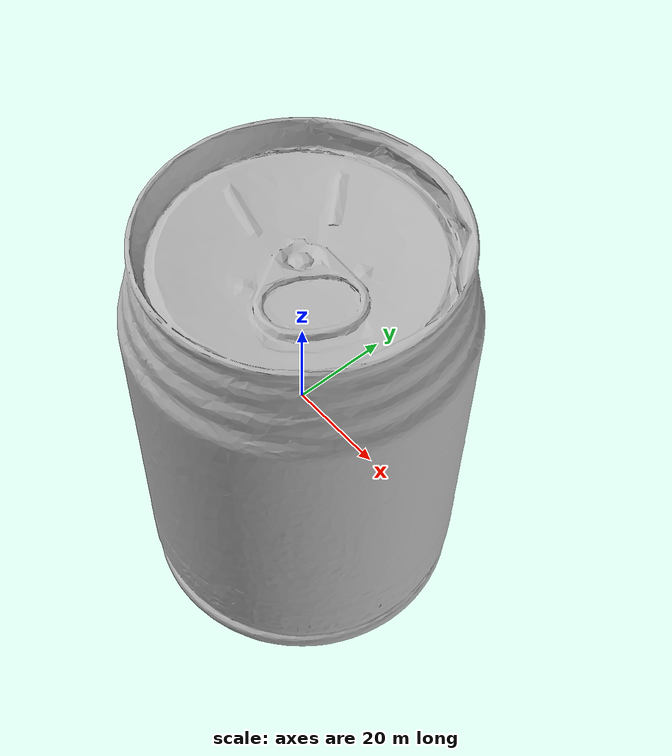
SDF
<sdf version="1.4">
 <world name="default">
  <light name="light1" type="point">
   <pose>0 0 1 0 0 0</pose>
   <diffuse>3 3 3 1</diffuse>
   <specular>3 3 3 1</specular>
  </light>
  <light name="light2" type="point">
   <pose>0 0.5 2 0 0 0</pose>
   <diffuse>1 1 1 1</diffuse>
   <specular>1 1 1 1</specular>
  </light>
  <light name="light3" type="point">
   <pose>0 0.5 2 0 0 0</pose>
   <diffuse>3 3 3 1</diffuse>
   <specular>3 3 3 1</specular>
  </light>
  <scene><ambient>0.7 0.7 0.7</ambient></scene>
  <model name="box2">
   <link name="link_box2">
    <collision name="default">
     <geometry>
      <mesh><uri>model://wooden_puzzle2/collision_meshes/collision.obj</uri><scale>1.0 1.0 1.0</scale></mesh>
     </geometry>
     <surface>
      <friction><ode><mu>0.5</mu><mu2>0.5</mu2></ode></friction>
      <contact><ode><max_vel>0</max_vel><min_depth>0.0001</min_depth><kp>1e8</kp></ode></contact>
     </surface>
    </collision>
    <visual name="default">
     <geometry>
      <mesh><uri>model://wooden_puzzle2/visual_meshes/visual.dae</uri><scale>1.0 1.0 1.0</scale></mesh>
     </geometry>
    </visual>
    <inertial>
     <mass>0.03464552015066147</mass>
     <pose>2.7402536943554878e-05 4.997663199901581e-05 6.587122334167361e-05 -0.1920274284601778 0.6112817660648215 -0.6338676817937987</pose>
     <inertia>
      <ixx>6.440233e-06</ixx>
      <iyy>6.6177017e-06</iyy>
      <izz>6.52356e-06</izz>
      <ixy>0</ixy>
      <ixz>0</ixz>
      <iyz>0</iyz>
     </inertia>
    </inertial>
   </link>
   <pose>-0.02368575520813465 0.04346355423331261 0.01691773720085621 0.020847759546416194 0.0007221421139157226 -2.364591112173379</pose>
  </model>
  <model name="box3">
   <link name="link_box3">
    <collision name="default">
     <geometry>
      <mesh><uri>model://wooden_puzzle1/collision_meshes/collision.obj</uri><scale>1.0 1.0 1.0</scale></mesh>
     </geometry>
     <surface>
      <friction><ode><mu>0.5</mu><mu2>0.5</mu2></ode></friction>
      <contact><ode><max_vel>0</max_vel><min_depth>0.0001</min_depth><kp>1e8</kp></ode></contact>
     </surface>
    </collision>
    <visual name="default">
     <geometry>
      <mesh><uri>model://wooden_puzzle1/visual_meshes/visual.dae</uri><scale>1.0 1.0 1.0</scale></mesh>
     </geometry>
    </visual>
    <inertial>
     <mass>0.03424873203039169</mass>
     <pose>-0.0001735068071866408 7.97226166469045e-05 -9.191554272547364e-05 -0.07784599296854997 -0.2636133645981781 -0.5528677830585703</pose>
     <inertia>
      <ixx>6.4618e-06</ixx>
      <iyy>6.3374077e-06</iyy>
      <izz>6.413012e-06</izz>
      <ixy>0</ixy>
      <ixz>0</ixz>
      <iyz>0</iyz>
     </inertia>
    </inertial>
   </link>
   <pose>-0.04972228407859802 0.38295021653175354 0.01686668209731579 0.006190220611910727 -0.009709291037765497 -1.588397207893897</pose>
  </model>
  <model name="can1">
   <link name="link_can1">
    <collision name="default">
     <geometry>
      <mesh><uri>model://pepsi/collision_meshes/collision.obj</uri><scale>1.0 1.0 1.0</scale></mesh>
     </geometry>
     <surface>
      <friction><ode><mu>0.5</mu><mu2>0.5</mu2></ode></friction>
      <contact><ode><max_vel>0</max_vel><min_depth>0.0001</min_depth><kp>1e8</kp></ode></contact>
     </surface>
    </collision>
    <visual name="default">
     <geometry><mesh><uri>model://pepsi/visual_meshes/visual.dae</uri><scale>1.0 1.0 1.0</scale></mesh></geometry>
    </visual>
    <inertial>
     <mass>0.3250696361064911</mass>
     <pose>-7.5590331107378e-05 2.99312814604491e-05 -0.0003384356386959553 -0.0010678660158137958 -0.0021735266966629516 0.5674177426725915</pose>
     <inertia>
      <ixx>0.0006476009</ixx>
      <iyy>0.0006471292</iyy>
      <izz>0.00013783273</izz>
      <ixy>0</ixy>
      <ixz>0</ixz>
      <iyz>0</iyz>
     </inertia>
    </inertial>
   </link>
   <pose>0.20334281027317047 0.16970983147621155 0.07449635863304138 -1.9251018678785555e-05 1.9599155411432363e-06 -0.3826732756197979</pose>
  </model>
  <model name="can2">
   <link name="link_can2">
    <collision name="default">
     <geometry>
      <mesh><uri>model://redbull/collision_meshes/collision.obj</uri><scale>1.0 1.0 1.0</scale></mesh>
     </geometry>
     <surface>
      <friction><ode><mu>0.5</mu><mu2>0.5</mu2></ode></friction>
      <contact><ode><max_vel>0</max_vel><min_depth>0.0001</min_depth><kp>1e8</kp></ode></contact>
     </surface>
    </collision>
    <visual name="default">
     <geometry>
      <mesh><uri>model://redbull/visual_meshes/visual.dae</uri><scale>1.0 1.0 1.0</scale></mesh>
     </geometry>
    </visual>
    <inertial>
     <mass>0.28235653042793274</mass>
     <pose>-2.2127058400656097e-05 -0.00012659600179176778 -0.0006860987632535398 0.0011377565977294822 -0.010800863454111471 0.5858141898730843</pose>
     <inertia>
      <ixx>0.0002654759</ixx>
      <iyy>0.0002657</iyy>
      <izz>0.00015754026</izz>
      <ixy>0</ixy>
      <ixz>0</ixz>
      <iyz>0</iyz>
     </inertia>
    </inertial>
   </link>
   <pose>0.07961872965097427 -0.07521496713161469 0.04638563469052315 -0.010489719487279357 0.0072607613694920916 1.4354483738284363</pose>
  </model>
  <physics type="ode">
   <max_contacts>50</max_contacts>
   <ode>
    <solver><type>quick</type><iters>75</iters></solver>
    <constraints>
     <contact_max_correcting_vel>0</contact_max_correcting_vel>
     <contact_surface_layer>0</contact_surface_layer>
    </constraints>
   </ode>
  </physics>
 </world>
</sdf>
